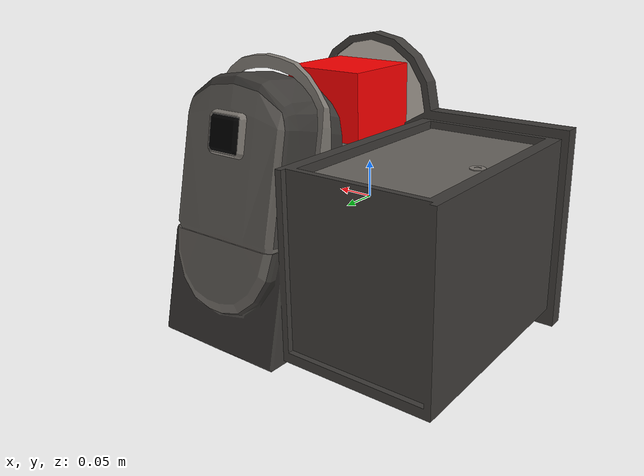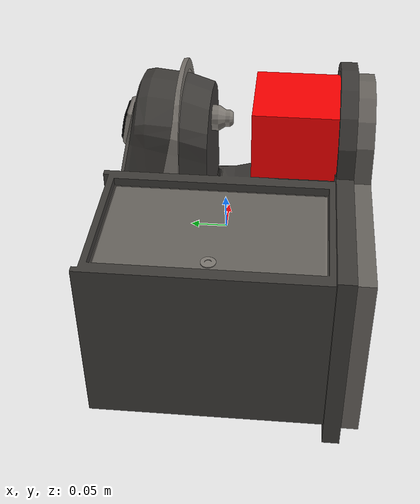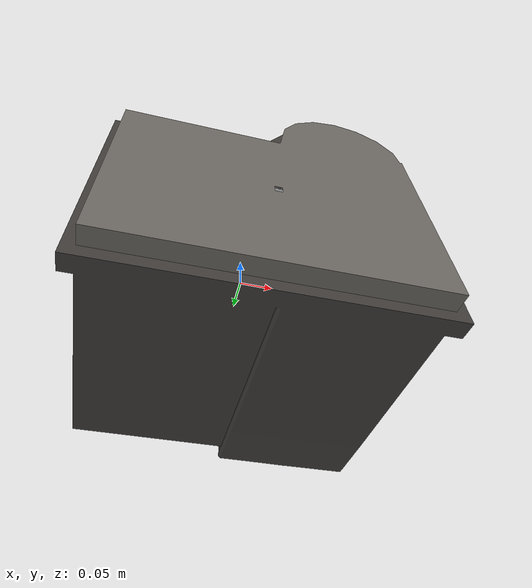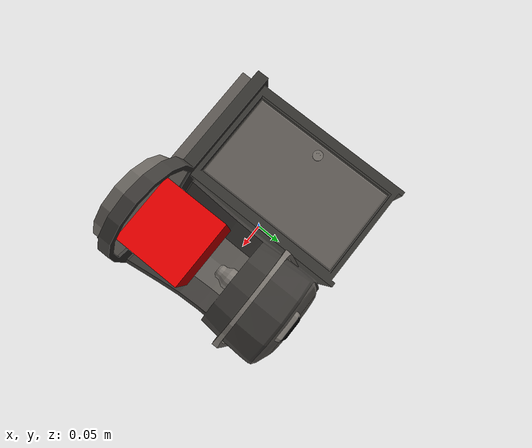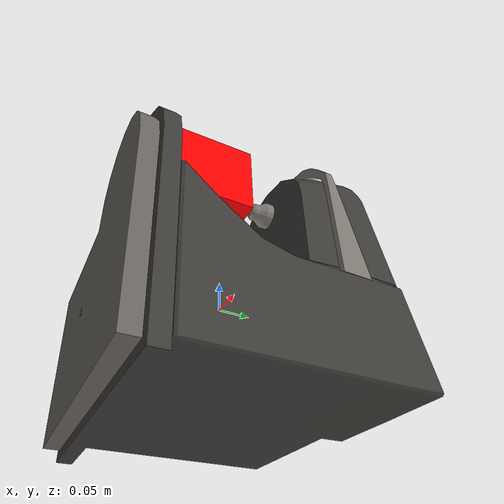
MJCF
<mujoco model="coffee_machine_20">
  <compiler autolimits="true" boundmass="0.01" angle="radian"/>
  <default>
    <default class="/">
      <default class="__VISUAL_MJT__">
        <geom contype="0" conaffinity="0" group="0"/>
      </default>
      <default class="__STRUCTURAL_MJT__">
        <geom contype="8" conaffinity="15" group="4" friction="0.90000000000000002 0.90000000000000002 0.001" solref="0.025000000000000001 1" solimp="0.998 0.998 0.001"/>
      </default>
      <default class="__DYNAMIC_MJT__">
        <geom contype="1" conaffinity="15" group="4" friction="0.90000000000000002 0.90000000000000002 0.001" solref="0.025000000000000001 1" solimp="0.998 0.998 0.001"/>
      </default>
    </default>
  </default>
  <asset>
    <material name="material_coffee_machine_backup_mat" class="/" specular="0.5" shininess="0.5" rgba="0.5 0.5 0.5 1"/>
    <material name="material_Coffee_Machine_Readout_Mat_Off" class="/" specular="0.5" shininess="0.5" rgba="0 0 0 1"/>
    <texture name="Coffee_Machine_Decal_Mat" type="2d" file="Coffee_Machine_Decal_AlbedoTransparency.png"/>
    <material name="material_Coffee_Machine_Decal_Mat" class="/" texture="Coffee_Machine_Decal_Mat" specular="0.5" shininess="0.5" rgba="1 1 1 1"/>
    <texture name="Coffee_Machine_Metal_Mat" type="2d" file="MetalBumpy_AlbedoTransparency.png"/>
    <material name="material_Coffee_Machine_Metal_Mat" class="/" texture="Coffee_Machine_Metal_Mat" specular="0.5" shininess="0.5" rgba="0.66176469999999998 0.66176469999999998 0.66176469999999998 1"/>
    <texture name="Coffee_Machine_Secondary5_Color_Mat" type="2d" file="BrushedIron_AlbedoTransparency.png"/>
    <material name="material_Coffee_Machine_Secondary5_Color_Mat" class="/" texture="Coffee_Machine_Secondary5_Color_Mat" specular="0.5" shininess="0.5" rgba="0.55147060000000003 0.55147060000000003 0.55147060000000003 1"/>
    <texture name="Coffee_Machine_Primary5_Color_Mat" type="2d" file="BrushedAluminum_AlbedoTransparency.png"/>
    <material name="material_Coffee_Machine_Primary5_Color_Mat" class="/" texture="Coffee_Machine_Primary5_Color_Mat" specular="0.5" shininess="0.5" rgba="0.32352940000000002 0.32352940000000002 0.32352940000000002 1"/>
    <mesh name="coffee_machine_20_coffee_machine_20_0" class="/" file="coffee_machine_20_coffee_machine_20/coffee_machine_20_coffee_machine_20_0.obj" scale="1 1 1"/>
    <mesh name="coffee_machine_20_coffee_machine_20_1" class="/" file="coffee_machine_20_coffee_machine_20/coffee_machine_20_coffee_machine_20_1.obj" scale="1 1 1"/>
    <mesh name="coffee_machine_20_coffee_machine_20_2" class="/" file="coffee_machine_20_coffee_machine_20/coffee_machine_20_coffee_machine_20_2.obj" scale="1 1 1"/>
    <mesh name="coffee_machine_20_coffee_machine_20_3" class="/" file="coffee_machine_20_coffee_machine_20/coffee_machine_20_coffee_machine_20_3.obj" scale="1 1 1"/>
    <mesh name="coffee_machine_20_coffee_machine_20_4" class="/" file="coffee_machine_20_coffee_machine_20/coffee_machine_20_coffee_machine_20_4.obj" scale="1 1 1"/>
    <mesh name="coffee_machine_20_coffee_machine_20_5" class="/" file="coffee_machine_20_coffee_machine_20/coffee_machine_20_coffee_machine_20_5.obj" scale="1 1 1"/>
  </asset>
  <worldbody>
    <body name="coffee_machine_20">
      <joint name="coffee_machine_20_free" class="/" type="free" pos="0 0 0" axis="0 0 1" stiffness="0" range="0 0" armature="0" damping="0.10000000000000001" frictionloss="0"/>
      <body name="coffee_machine_20_coffee_machine_20" pos="-0.0017600000000000001 -0.21669000075995923 -0.057360000000000001" quat="1 0 0 0">
        <geom name="coffee_machine_20_coffee_machine_20_0" class="__VISUAL_MJT__" type="mesh" material="material_coffee_machine_backup_mat" shellinertia="true" mesh="coffee_machine_20_coffee_machine_20_0"/>
        <geom name="coffee_machine_20_coffee_machine_20_1" class="__VISUAL_MJT__" type="mesh" material="material_Coffee_Machine_Readout_Mat_Off" shellinertia="false" mesh="coffee_machine_20_coffee_machine_20_1"/>
        <geom name="coffee_machine_20_coffee_machine_20_2" class="__VISUAL_MJT__" type="mesh" material="material_Coffee_Machine_Decal_Mat" shellinertia="false" mesh="coffee_machine_20_coffee_machine_20_2"/>
        <geom name="coffee_machine_20_coffee_machine_20_3" class="__VISUAL_MJT__" type="mesh" material="material_Coffee_Machine_Metal_Mat" shellinertia="false" mesh="coffee_machine_20_coffee_machine_20_3"/>
        <geom name="coffee_machine_20_coffee_machine_20_4" class="__VISUAL_MJT__" type="mesh" material="material_Coffee_Machine_Secondary5_Color_Mat" shellinertia="false" mesh="coffee_machine_20_coffee_machine_20_4"/>
        <geom name="coffee_machine_20_coffee_machine_20_5" class="__VISUAL_MJT__" type="mesh" material="material_Coffee_Machine_Primary5_Color_Mat" shellinertia="false" mesh="coffee_machine_20_coffee_machine_20_5"/>
        <site name="coffee_machine_20_Receptacle_0" class="/" type="box" rgba="1 0 0 1" size="0.063876479864120483 0.06764182448387146 0.051405489444732666" pos="0.10920000076293945 0.11714182794094086 0.16581852734088898" quat="1 0 0 0"/>
        <geom name="coffee_machine_20_PrimitiveCollider_0" class="__DYNAMIC_MJT__" type="box" size="0.11968261003494263 0.20069417357444763 0.14853140711784363" rgba="0 1 0 1" pos="-0.10044890642166138 0.20069417357444763 0.0041365921497344971" quat="1 0 0 0"/>
        <geom name="coffee_machine_20_PrimitiveCollider_1" class="__DYNAMIC_MJT__" type="box" size="0.10664176940917969 0.20069417357444763 0.12139269709587097" rgba="0 1 0 1" pos="0.10996484756469727 0.20069417357444763 -0.023002117872238159" quat="1 0 0 0"/>
        <geom name="coffee_machine_20_PrimitiveCollider_2" class="__DYNAMIC_MJT__" type="box" size="0.21836906671524048 0.024468213319778442 0.20175167918205261" rgba="0 1 0 1" pos="-0.0017624497413635254 0.024468213319778442 0.057356864213943481" quat="1 0 0 0"/>
        <geom name="coffee_machine_20_PrimitiveCollider_3" class="__DYNAMIC_MJT__" type="box" size="0.10208165645599365 0.070103704929351807 0.18925854563713074" rgba="0 1 0 1" pos="0.10996484756469727 0.30043649673461914 0.044863730669021606" quat="1 0 0 0"/>
      </body>
    </body>
  </worldbody>
</mujoco>
